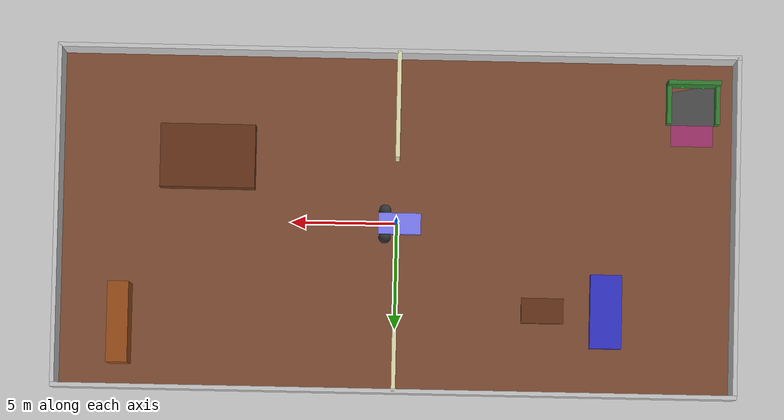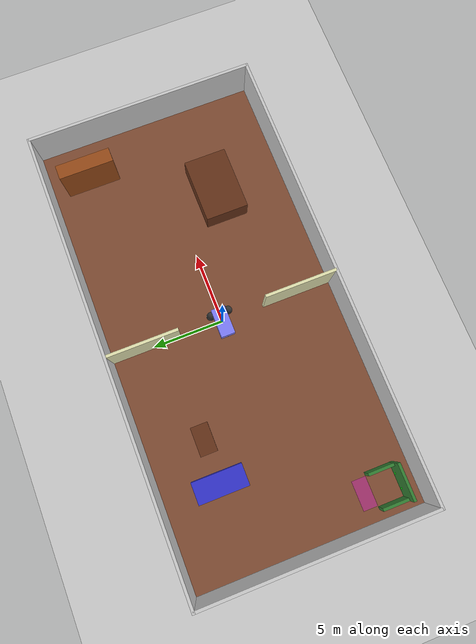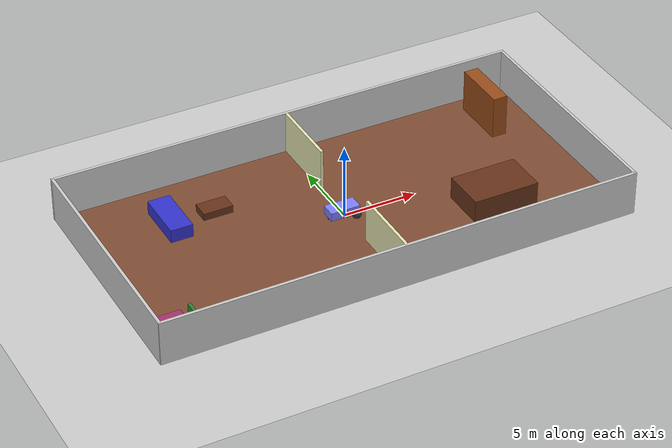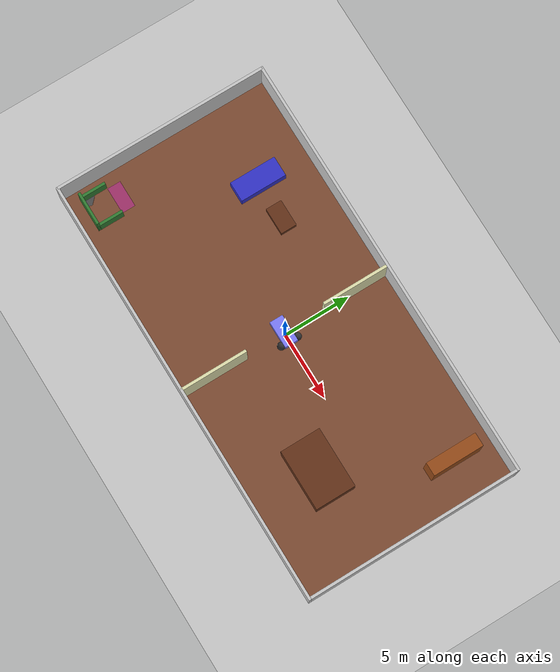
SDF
<?xml version="1.0" ?>
<sdf version="1.8">
  <world name="diff_drive_world">
    <physics name="1ms" type="ignored">
      <max_step_size>0.001</max_step_size>
      <real_time_factor>1.0</real_time_factor>
    </physics>

    <!-- Gazebo plugins -->
    <plugin filename="gz-sim-physics-system" name="gz::sim::systems::Physics">
    </plugin>
    <plugin filename="gz-sim-user-commands-system" name="gz::sim::systems::UserCommands">
    </plugin>
    <plugin filename="gz-sim-scene-broadcaster-system" name="gz::sim::systems::SceneBroadcaster">
    </plugin>
    <plugin filename="gz-sim-contact-system" name="gz::sim::systems::Contact">
    </plugin>
    <plugin
      filename="gz-sim-sensors-system"
      name="gz::sim::systems::Sensors">
    </plugin>

    <!-- Gravity -->
    <gravity>0 0 -9.8</gravity>
    <magnetic_field>6e-06 2.3e-05 -4.2e-05</magnetic_field>

    <!-- Atmosphere -->
    <atmosphere type='adiabatic'/>

    <!-- Scene -->
    <scene>
      <grid>true</grid>
      <ambient>0.4 0.4 0.4 1</ambient>
      <background>0.7 0.7 0.7 1</background>
      <shadows>1</shadows>
    </scene>

    <!-- Lighting -->
    <light type="directional" name="sun">
      <cast_shadows>true</cast_shadows>
      <pose>0 0 10 0 0 0</pose>
      <diffuse>0.8 0.8 0.8 1</diffuse>
      <specular>0.2 0.2 0.2 1</specular>
      <attenuation>
        <range>1000</range>
        <constant>0.9</constant>
        <linear>0.01</linear>
        <quadratic>0.001</quadratic>
      </attenuation>
      <direction>-0.5 0.1 -0.9</direction>
    </light>

    <!-- Ground -->
    <model name="ground_plane">
      <static>true</static>
      <link name="link">
        <collision name="collision">
          <geometry>
            <plane>
              <normal>0 0 1</normal>
              <size>200 200</size>
            </plane>
          </geometry>
          <surface>
            <friction>
              <ode>
                <mu>100</mu>
                <mu2>50</mu2>
              </ode>
            </friction>
          </surface>
        </collision>
        <visual name="visual">
          <geometry>
            <plane>
              <normal>0 0 1</normal>
              <size>200 200</size>
            </plane>
          </geometry>
          <material>
            <ambient>0.8 0.8 0.8 1</ambient>
            <diffuse>0.8 0.8 0.8 1</diffuse>
            <specular>0.8 0.8 0.8 1</specular>
          </material>
        </visual>
      </link>
    </model>

    <!-- Two Room House Structure - WITH OPEN DOORWAY -->
    <model name="house">
      <pose>0 0 0 0 0 0</pose>
      <static>true</static>

      <!-- Extended Floor for two rooms -->
      <link name="floor">
        <pose>0 0 0.05 0 0 0</pose>
        <collision name="collision">
          <geometry>
            <box>
              <size>32 16 0.1</size>
            </box>
          </geometry>
        </collision>
        <visual name="visual">
          <geometry>
            <box>
              <size>32 16 0.1</size>
            </box>
          </geometry>
          <material>
            <ambient>0.5 0.3 0.2 1</ambient>
            <diffuse>0.5 0.3 0.2 1</diffuse>
          </material>
        </visual>
      </link>

      <!-- External Walls -->
      <!-- Front wall -->
      <link name="wall_front">
        <pose>0 -8 1.5 0 0 0</pose>
        <collision name="collision">
          <geometry>
            <box>
              <size>32.2 0.2 3</size>
            </box>
          </geometry>
        </collision>
        <visual name="visual">
          <geometry>
            <box>
              <size>32.2 0.2 3</size>
            </box>
          </geometry>
          <material>
            <ambient>0.8 0.8 0.8 1</ambient>
            <diffuse>0.8 0.8 0.8 1</diffuse>
          </material>
        </visual>
      </link>

      <!-- Back wall -->
      <link name="wall_back">
        <pose>0 8 1.5 0 0 0</pose>
        <collision name="collision">
          <geometry>
            <box>
              <size>32.2 0.2 3</size>
            </box>
          </geometry>
        </collision>
        <visual name="visual">
          <geometry>
            <box>
              <size>32.2 0.2 3</size>
            </box>
          </geometry>
          <material>
            <ambient>0.8 0.8 0.8 1</ambient>
            <diffuse>0.8 0.8 0.8 1</diffuse>
          </material>
        </visual>
      </link>

      <!-- Left wall -->
      <link name="wall_left">
        <pose>-16 0 1.5 0 0 0</pose>
        <collision name="collision">
          <geometry>
            <box>
              <size>0.2 16 3</size>
            </box>
          </geometry>
        </collision>
        <visual name="visual">
          <geometry>
            <box>
              <size>0.2 16 3</size>
            </box>
          </geometry>
          <material>
            <ambient>0.8 0.8 0.8 1</ambient>
            <diffuse>0.8 0.8 0.8 1</diffuse>
          </material>
        </visual>
      </link>

      <!-- Right wall -->
      <link name="wall_right">
        <pose>16 0 1.5 0 0 0</pose>
        <collision name="collision">
      <geometry>
            <box>
              <size>0.2 16 3</size>
            </box>
          </geometry>
        </collision>
        <visual name="visual">
          <geometry>
            <box>
              <size>0.2 16 3</size>
            </box>
          </geometry>
          <material>
            <ambient>0.8 0.8 0.8 1</ambient>
            <diffuse>0.8 0.8 0.8 1</diffuse>
          </material>
        </visual>
      </link>

      <!-- MODIFIED: Dividing wall with larger open doorway -->
      <!-- Upper part of dividing wall (above doorway) - made smaller -->
      <link name="dividing_wall_upper">
        <pose>0 5.5 1.5 0 0 0</pose>
        <collision name="collision">
          <geometry>
            <box>
              <size>0.2 5 3</size>
            </box>
          </geometry>
        </collision>
        <visual name="visual">
          <geometry>
            <box>
              <size>0.2 5 3</size>
            </box>
          </geometry>
          <material>
            <ambient>0.9 0.9 0.7 1</ambient>
            <diffuse>0.9 0.9 0.7 1</diffuse>
          </material>
        </visual>
      </link>

      <!-- Lower part of dividing wall (below doorway) - made smaller -->
      <link name="dividing_wall_lower">
        <pose>0 -5.5 1.5 0 0 0</pose>
        <collision name="collision">
          <geometry>
            <box>
              <size>0.2 5 3</size>
            </box>
          </geometry>
        </collision>
        <visual name="visual">
          <geometry>
            <box>
              <size>0.2 5 3</size>
            </box>
          </geometry>
          <material>
            <ambient>0.9 0.9 0.7 1</ambient>
            <diffuse>0.9 0.9 0.7 1</diffuse>
          </material>
        </visual>
      </link>

    </model>

    <!-- CHARGING DOCK STATION - HEIGHT INCREASED -->
    <model name="charging_dock">
      <pose>-14 -6 0 0 0 0</pose>
      <static>true</static>

      <!-- Base platform - Height increased -->
      <link name="dock_base">
        <pose>0 0 0.05 0 0 0</pose>
        <collision name="collision">
          <geometry>
            <box>
              <size>2.5 2.0 0.1</size>
            </box>
          </geometry>
        </collision>
        <visual name="visual">
          <geometry>
            <box>
              <size>2.5 2.0 0.1</size>
            </box>
          </geometry>
          <material>
            <ambient>0.2 0.2 0.2 1</ambient>
            <diffuse>0.3 0.3 0.3 1</diffuse>
            <specular>0.1 0.1 0.1 1</specular>
          </material>
        </visual>
      </link>

      <!-- Back wall of dock - Height increased -->
      <link name="dock_back_wall">
        <pose>0 -0.9 1.0 0 0 0</pose>
        <collision name="collision">
          <geometry>
            <box>
              <size>2.5 0.2 2.0</size>
            </box>
          </geometry>
        </collision>
        <visual name="visual">
          <geometry>
            <box>
              <size>2.5 0.2 2.0</size>
            </box>
          </geometry>
          <material>
            <ambient>0.1 0.3 0.1 1</ambient>
            <diffuse>0.2 0.5 0.2 1</diffuse>
            <specular>0.1 0.2 0.1 1</specular>
          </material>
        </visual>
      </link>

      <!-- Side walls - Height increased -->
      <link name="dock_left_wall">
        <pose>-1.15 0 0.6 0 0 0</pose>
        <collision name="collision">
          <geometry>
            <box>
              <size>0.2 2.0 1.2</size>
            </box>
          </geometry>
        </collision>
        <visual name="visual">
          <geometry>
            <box>
              <size>0.2 2.0 1.2</size>
            </box>
          </geometry>
          <material>
            <ambient>0.1 0.3 0.1 1</ambient>
            <diffuse>0.2 0.5 0.2 1</diffuse>
          </material>
        </visual>
      </link>

      <link name="dock_right_wall">
        <pose>1.15 0 0.6 0 0 0</pose>
        <collision name="collision">
          <geometry>
            <box>
              <size>0.2 2.0 1.2</size>
            </box>
          </geometry>
        </collision>
        <visual name="visual">
          <geometry>
            <box>
              <size>0.2 2.0 1.2</size>
            </box>
          </geometry>
          <material>
            <ambient>0.1 0.3 0.1 1</ambient>
            <diffuse>0.2 0.5 0.2 1</diffuse>
          </material>
        </visual>
      </link>

      <!-- Charging contacts/indicators - Position adjusted for new height -->
      <link name="charging_indicator_left">
        <pose>-0.5 -0.85 0.5 0 0 0</pose>
        <visual name="visual">
          <geometry>
            <cylinder>
              <radius>0.1</radius>
              <length>0.05</length>
            </cylinder>
          </geometry>
          <material>
            <ambient>0 1 0 1</ambient>
            <diffuse>0 1 0 1</diffuse>
            <emissive>0 0.3 0 1</emissive>
          </material>
        </visual>
      </link>

      <link name="charging_indicator_right">
        <pose>0.5 -0.85 0.5 0 0 0</pose>
        <visual name="visual">
          <geometry>
            <cylinder>
              <radius>0.1</radius>
              <length>0.05</length>
            </cylinder>
          </geometry>
          <material>
            <ambient>0 1 0 1</ambient>
            <diffuse>0 1 0 1</diffuse>
            <emissive>0 0.3 0 1</emissive>
          </material>
        </visual>
      </link>

      <!-- Docking guide markers on the floor -->
      <link name="guide_marker_1">
        <pose>0 0.5 0.05 0 0 0</pose>
        <visual name="visual">
          <geometry>
            <box>
              <size>0.2 0.05 0.01</size>
            </box>
          </geometry>
          <material>
            <ambient>1 1 0 1</ambient>
            <diffuse>1 1 0 1</diffuse>
            <emissive>0.2 0.2 0 1</emissive>
          </material>
        </visual>
      </link>

      <link name="guide_marker_2">
        <pose>0 1.0 0.05 0 0 0</pose>
        <visual name="visual">
          <geometry>
            <box>
              <size>0.2 0.05 0.01</size>
            </box>
          </geometry>
          <material>
            <ambient>1 1 0 1</ambient>
            <diffuse>1 1 0 1</diffuse>
            <emissive>0.2 0.2 0 1</emissive>
          </material>
        </visual>
      </link>

      <link name="guide_marker_3">
        <pose>0 1.5 0.05 0 0 0</pose>
        <visual name="visual">
          <geometry>
            <box>
              <size>0.2 0.05 0.01</size>
            </box>
          </geometry>
          <material>
            <ambient>1 1 0 1</ambient>
            <diffuse>1 1 0 1</diffuse>
            <emissive>0.2 0.2 0 1</emissive>
          </material>
        </visual>
      </link>

      <!-- Dock status sign - Position adjusted for new height -->
      <link name="dock_sign">
        <pose>0 -0.85 1.5 0 0 0</pose>
        <visual name="visual">
          <geometry>
            <box>
              <size>1.0 0.05 0.3</size>
            </box>
          </geometry>
          <material>
            <ambient>0 0 1 1</ambient>
            <diffuse>0 0 1 1</diffuse>
            <emissive>0 0 0.2 1</emissive>
          </material>
        </visual>
      </link>

    </model>

    <!-- DOCK SENSORS AND DETECTION ZONE -->
    <!-- Invisible detection zone for docking -->
    <model name="dock_detection_zone">
      <pose>-14 -4.5 0.1 0 0 0</pose>
      <static>true</static>
      <link name="detection_link">
        <collision name="detection_collision">
          <geometry>
            <box>
              <size>2.0 1.0 0.2</size>
            </box>
          </geometry>
          <surface>
            <contact>
              <collide_without_contact>true</collide_without_contact>
            </contact>
          </surface>
        </collision>
        <!-- Make it barely visible for debugging -->
        <visual name="detection_visual">
          <geometry>
            <box>
              <size>2.0 1.0 0.01</size>
            </box>
          </geometry>
          <material>
            <ambient>1 0 1 0.3</ambient>
            <diffuse>1 0 1 0.3</diffuse>
          </material>
        </visual>
      </link>
    </model>

    <!-- Room 1 Furniture (Left Room) - ONLY 2 OBJECTS -->
    <!-- Living room setup -->
    <model name="sofa">
      <pose>-10 4 0.5 0 0 1.57</pose>
      <static>true</static>
      <link name="link">
        <collision name="collision">
          <geometry>
            <box>
              <size>3.5 1.5 1</size>
            </box>
          </geometry>
        </collision>
        <visual name="visual">
          <geometry>
            <box>
              <size>3.5 1.5 1</size>
            </box>
          </geometry>
          <material>
            <ambient>0.2 0.2 0.8 1</ambient>
            <diffuse>0.2 0.2 0.8 1</diffuse>
          </material>
        </visual>
      </link>
    </model>

    <model name="coffee_table">
      <pose>-7 4 0.3 0 0 0</pose>
      <static>true</static>
      <link name="link">
        <collision name="collision">
          <geometry>
            <box>
              <size>2 1.2 0.6</size>
            </box>
          </geometry>
        </collision>
        <visual name="visual">
          <geometry>
            <box>
              <size>2 1.2 0.6</size>
            </box>
          </geometry>
          <material>
            <ambient>0.4 0.2 0.1 1</ambient>
            <diffuse>0.4 0.2 0.1 1</diffuse>
          </material>
        </visual>
      </link>
    </model>

    <!-- Room 2 Furniture (Right Room) - ONLY 2 OBJECTS -->
    <!-- Dining/Office room setup -->
    <model name="dining_table">
      <pose>9 -3 0.8 0 0 0</pose>
      <static>true</static>
      <link name="link">
        <collision name="collision">
          <geometry>
            <box>
              <size>4.5 3.0 1.6</size>
            </box>
          </geometry>
        </collision>
        <visual name="visual">
          <geometry>
            <box>
              <size>4.5 3.0 1.6</size>
            </box>
          </geometry>
          <material>
            <ambient>0.4 0.2 0.1 1</ambient>
            <diffuse>0.4 0.2 0.1 1</diffuse>
          </material>
        </visual>
      </link>
    </model>

    <model name="bookshelf">
      <pose>13 5 1.5 0 0 1.57</pose>
      <static>true</static>
      <link name="link">
        <collision name="collision">
          <geometry>
            <box>
              <size>3.8 1.0 3.0</size>
            </box>
          </geometry>
        </collision>
        <visual name="visual">
          <geometry>
            <box>
              <size>3.8 1.0 3.0</size>
            </box>
          </geometry>
          <material>
            <ambient>0.6 0.3 0.1 1</ambient>
            <diffuse>0.6 0.3 0.1 1</diffuse>
          </material>
        </visual>
      </link>
    </model>

    <!-- Robot spawn position -->
    <model name="diff_drive">
      <self_collide>true</self_collide>
      <pose>0 0 0.35 0 0 0</pose>
      <include merge="true">
        <uri>package://robot_nav_description/models/diff_drive</uri>
      </include>

      <plugin
        filename="gz-sim-joint-state-publisher-system"
        name="gz::sim::systems::JointStatePublisher">
      </plugin>

      <plugin
        filename="gz-sim-pose-publisher-system"
        name="gz::sim::systems::PosePublisher">
        <publish_link_pose>true</publish_link_pose>
        <use_pose_vector_msg>true</use_pose_vector_msg>
        <static_publisher>true</static_publisher>
        <static_update_frequency>1</static_update_frequency>
      </plugin>

      <plugin
        filename="gz-sim-odometry-publisher-system"
        name="gz::sim::systems::OdometryPublisher">
        <odom_frame>diff_drive/odom</odom_frame>
        <robot_base_frame>diff_drive</robot_base_frame>
      </plugin>
    </model>

  </world>
</sdf>

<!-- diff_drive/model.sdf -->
<sdf version="1.8">
    <model name='diff_drive'>
      <link name='chassis'>
        <pose>-0.151427 -0 0.175 0 -0 0</pose>
        <inertial>
          <mass>1.14395</mass>
          <inertia>
            <ixx>0.126164</ixx>
            <ixy>0</ixy>
            <ixz>0</ixz>
            <iyy>0.416519</iyy>
            <iyz>0</iyz>
            <izz>0.481014</izz>
          </inertia>
        </inertial>
        <visual name='visual_chassis'>
          <geometry>
            <box>
              <size>2.01142 1 0.568726</size>
            </box>
          </geometry>
          <material>
            <ambient>0.5 0.5 1.0 1</ambient>
            <diffuse>0.5 0.5 1.0 1</diffuse>
            <specular>0.0 0.0 1.0 1</specular>
          </material>
        </visual>
        <collision name='collision_chassis'>
          <geometry>
            <box>
              <size>2.01142 1 0.568726</size>
            </box>
          </geometry>
        </collision>
      </link>

      <link name='left_wheel'>
        <pose>0.554283 0.625029 -0.025 -1.5707 0 0</pose>
        <inertial>
          <mass>2</mass>
          <inertia>
            <ixx>0.145833</ixx>
            <ixy>0</ixy>
            <ixz>0</ixz>
            <iyy>0.145833</iyy>
            <iyz>0</iyz>
            <izz>0.125</izz>
          </inertia>
        </inertial>
        <visual name='visual_left_wheel'>
          <geometry>
            <sphere>
              <radius>0.3</radius>
            </sphere>
          </geometry>
          <material>
            <ambient>0.2 0.2 0.2 1</ambient>
            <diffuse>0.2 0.2 0.2 1</diffuse>
            <specular>0.2 0.2 0.2 1</specular>
          </material>
        </visual>
        <collision name='collision_left_wheel'>
          <geometry>
            <sphere>
              <radius>0.3</radius>
            </sphere>
          </geometry>
        </collision>
      </link>

      <link name='right_wheel'>
        <pose>0.554282 -0.625029 -0.025 -1.5707 0 0</pose>
        <inertial>
          <mass>2</mass>
          <inertia>
            <ixx>0.145833</ixx>
            <ixy>0</ixy>
            <ixz>0</ixz>
            <iyy>0.145833</iyy>
            <iyz>0</iyz>
            <izz>0.125</izz>
          </inertia>
        </inertial>
        <visual name='visual_right_wheel'>
          <geometry>
            <sphere>
              <radius>0.3</radius>
            </sphere>
          </geometry>
          <material>
            <ambient>0.2 0.2 0.2 1</ambient>
            <diffuse>0.2 0.2 0.2 1</diffuse>
            <specular>0.2 0.2 0.2 1</specular>
          </material>
        </visual>
        <collision name='collision_right_wheel'>
          <geometry>
            <sphere>
              <radius>0.3</radius>
            </sphere>
          </geometry>
        </collision>
      </link>

      <link name='caster'>
        <pose>-0.957138 -0 -0.125 0 -0 0</pose>
        <inertial>
          <mass>1</mass>
          <inertia>
            <ixx>0.1</ixx>
            <ixy>0</ixy>
            <ixz>0</ixz>
            <iyy>0.1</iyy>
            <iyz>0</iyz>
            <izz>0.1</izz>
          </inertia>
        </inertial>
        <visual name='visual_caster'>
          <geometry>
            <sphere>
              <radius>0.2</radius>
            </sphere>
          </geometry>
          <material>
            <ambient>0.2 0.2 0.2 1</ambient>
            <diffuse>0.2 0.2 0.2 1</diffuse>
            <specular>0.2 0.2 0.2 1</specular>
          </material>
        </visual>
        <collision name='collision_caster'>
          <geometry>
            <sphere>
              <radius>0.2</radius>
            </sphere>
          </geometry>
        </collision>
      </link>

      <link name="lidar_link">
        <pose>0 0 0.5 0 0 0</pose>
        <inertial>
          <mass>0.1</mass>
          <inertia>
            <ixx>0.000166667</ixx>
            <iyy>0.000166667</iyy>
            <izz>0.000166667</izz>
          </inertia>
        </inertial>
        <collision name="collision">
          <geometry>
            <box>
              <size>0.1 0.1 0.1</size>
            </box>
          </geometry>
        </collision>
        <visual name="visual">
          <geometry>
            <box>
              <size>0.1 0.1 0.1</size>
            </box>
          </geometry>
        </visual>
        <sensor name='gpu_lidar' type='gpu_lidar'>
          <pose>0 0 0 0 0 0</pose>
          <topic>scan</topic>
           <gz_frame_id>diff_drive/lidar_link</gz_frame_id>
           <frame_id>lidar_link</frame_id>
          <update_rate>10</update_rate>
          <lidar>
            <scan>
              <horizontal>
                <samples>640</samples>
                <resolution>1</resolution>
                <min_angle>-3.141593</min_angle>
                <max_angle>3.141593</max_angle>
              </horizontal>
              <vertical>
                <samples>1</samples>
                <resolution>1</resolution>
                <min_angle>0.0</min_angle>
                <max_angle>0.0</max_angle>
              </vertical>
            </scan>
            <range>
              <min>0.08</min>
              <max>10.0</max>
              <resolution>0.01</resolution>
            </range>
          </lidar>
          <visualize>true</visualize>
        </sensor>
      </link>

      <!-- Depth Camera Link -->
      <link name="depth_camera_link">
        <pose>0.8 0 0.3 0 0 0</pose>
        <inertial>
          <mass>0.05</mass>
          <inertia>
            <ixx>0.000083333</ixx>
            <iyy>0.000083333</iyy>
            <izz>0.000083333</izz>
          </inertia>
        </inertial>
        <collision name="depth_camera_collision">
          <geometry>
            <box>
              <size>0.05 0.15 0.05</size>
            </box>
          </geometry>
        </collision>
        <visual name="depth_camera_visual">
          <geometry>
            <box>
              <size>0.05 0.15 0.05</size>
            </box>
          </geometry>
          <material>
            <ambient>0.1 0.1 0.1 1</ambient>
            <diffuse>0.1 0.1 0.1 1</diffuse>
            <specular>0.1 0.1 0.1 1</specular>
          </material>
        </visual>

        <!-- RGB Camera Sensor -->
        <sensor name="rgb_camera" type="camera">
          <pose>0 0 0 0 0 0</pose>
          <topic>rgb/image_raw</topic>
          <gz_frame_id>diff_drive/depth_camera_link</gz_frame_id>
          <frame_id>depth_camera_link</frame_id>
          <update_rate>30</update_rate>
          <camera>
            <horizontal_fov>1.047198</horizontal_fov>
            <image>
              <width>640</width>
              <height>480</height>
              <format>R8G8B8</format>
            </image>
            <clip>
              <near>0.1</near>
              <far>10.0</far>
            </clip>
          </camera>
          <always_on>1</always_on>
          <visualize>true</visualize>
        </sensor>

        <!-- Depth Camera Sensor -->
        <sensor name="depth_camera" type="depth_camera">
          <pose>0 0 0 0 0 0</pose>
          <topic>depth/image_raw</topic>
          <gz_frame_id>diff_drive/depth_camera_link</gz_frame_id>
          <frame_id>depth_camera_link</frame_id>
          <update_rate>30</update_rate>
          <camera>
            <horizontal_fov>1.047198</horizontal_fov>
            <image>
              <width>640</width>
              <height>480</height>
              <format>R_FLOAT32</format>
            </image>
            <clip>
              <near>0.1</near>
              <far>10.0</far>
            </clip>
          </camera>
          <always_on>1</always_on>
          <visualize>false</visualize>
        </sensor>

        <!-- RGBD Camera Sensor (Combined RGB + Depth) -->
        <sensor name="rgbd_camera" type="rgbd_camera">
          <pose>0 0 0 0 0 0</pose>
          <topic>rgbd</topic>
          <gz_frame_id>diff_drive/depth_camera_link</gz_frame_id>
          <frame_id>depth_camera_link</frame_id>
          <update_rate>30</update_rate>
          <camera>
            <horizontal_fov>1.047198</horizontal_fov>
            <image>
              <width>640</width>
              <height>480</height>
              <format>R8G8B8</format>
            </image>
            <depth_image>
              <width>640</width>
              <height>480</height>
              <format>R_FLOAT32</format>
            </depth_image>
            <clip>
              <near>0.1</near>
              <far>10.0</far>
            </clip>
          </camera>
          <always_on>1</always_on>
          <visualize>false</visualize>
        </sensor>
      </link>

      <!-- Joints -->
      <joint name='lidar_joint' type='fixed'>
        <parent>chassis</parent>
        <child>lidar_link</child>
      </joint>

      <joint name='depth_camera_joint' type='fixed'>
        <parent>chassis</parent>
        <child>depth_camera_link</child>
      </joint>

      <joint name='left_wheel_joint' type='revolute'>
        <parent>chassis</parent>
        <child>left_wheel</child>
        <axis>
          <xyz>0 0 1</xyz>
          <limit>
            <lower>-1.79769e+308</lower>
            <upper>1.79769e+308</upper>
          </limit>
        </axis>
      </joint>

      <joint name='right_wheel_joint' type='revolute'>
        <parent>chassis</parent>
        <child>right_wheel</child>
        <axis>
          <xyz>0 0 1</xyz>
          <limit>
            <lower>-1.79769e+308</lower>
            <upper>1.79769e+308</upper>
          </limit>
        </axis>
      </joint>

      <joint name='caster_wheel' type='ball'>
        <parent>chassis</parent>
        <child>caster</child>
      </joint>

    <!-- REPLACE the existing plugin section at the bottom of your SDF with this corrected version -->

    <!-- 1. DiffDrive Plugin (keep as is - this one is correct) -->

<!-- 1. DiffDrive Plugin - FIXED -->

<plugin filename="libgz-sim-diff-drive-system.so" name="gz::sim::systems::DiffDrive">
    <left_joint>left_wheel_joint</left_joint>
    <right_joint>right_wheel_joint</right_joint>
    <wheel_separation>1.25</wheel_separation>  <!-- Distance between wheels -->
    <wheel_radius>0.3</wheel_radius>           <!-- Wheel radius -->
    <odom_publish_frequency>30</odom_publish_frequency>
    <topic>/model/diff_drive/cmd_vel</topic>   <!-- Matches your bridge -->
    <odom_topic>odometry</odom_topic>
</plugin>

<!-- 2. Joint State Publisher Plugin -->
<plugin filename="libgz-sim-joint-state-publisher-system.so" name="gz::sim::systems::JointStatePublisher">
    <joint_name>left_wheel_joint</joint_name>
    <joint_name>right_wheel_joint</joint_name>
    <joint_name>caster_wheel</joint_name>
</plugin>
<!-- 3. Pose Publisher Plugin - For TF -->
<plugin filename="gz-sim-pose-publisher-system" name="gz::sim::systems::PosePublisher">
    <publish_link_pose>true</publish_link_pose>
    <publish_collision_pose>false</publish_collision_pose>
    <publish_visual_pose>false</publish_visual_pose>
    <use_pose_vector_msg>true</use_pose_vector_msg>
    <static_publisher>true</static_publisher>
    <static_update_frequency>1</static_update_frequency>
</plugin>
    </model>
</sdf>
